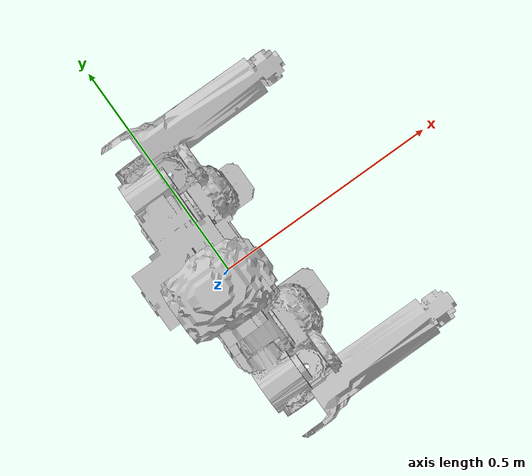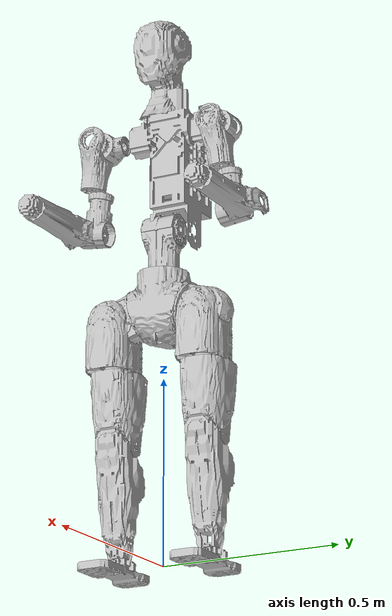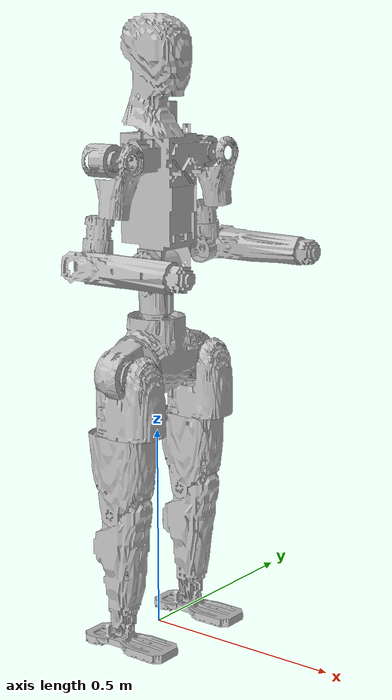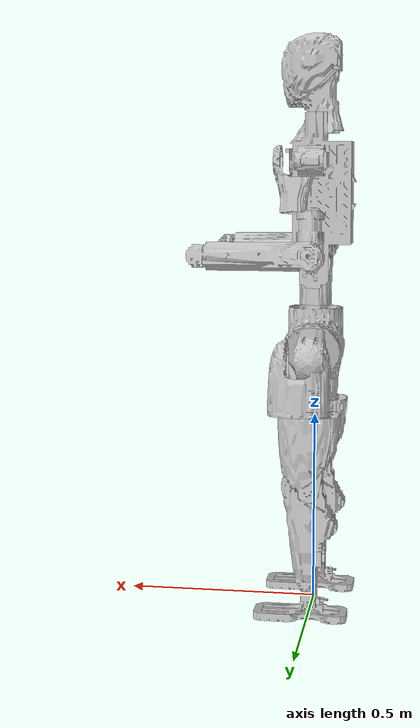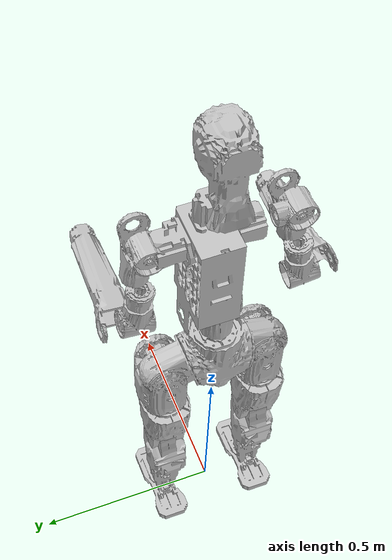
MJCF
<mujoco model="robot_251205">
    <compiler angle="radian" meshdir="../meshes_4_7" autolimits="true"/>

    <default>
        <default class="robot_251205">
            <!-- visual -->
            <default class="visual">
                <geom group="2" type="mesh" contype="0" conaffinity="0" rgba="0.75294 0.75294 0.75294 1"/>
            </default>

            <default class="collision">
                <geom group="3" mass="0" density="0" rgba="0.7 0.7 0.7 1"/>
            </default>

            <!-- joint defaults -->
            <default class="joint_150">
                <joint armature="0.07031" frictionloss="0.5" type="hinge" range="0 0" actuatorfrcrange="-150 150"/>
            </default>
            <default class="joint_95">
                <joint armature="0.07031" frictionloss="0.5" type="hinge" range="0 0" actuatorfrcrange="-95 95"/>
            </default>
            <default class="joint_75">
                <joint armature="0.0331" frictionloss="0.5" type="hinge" range="0 0" actuatorfrcrange="-75 75"/>
            </default>
            <default class="joint_60">
                <joint armature="0.03891" frictionloss="0.5" type="hinge" range="0 0" actuatorfrcrange="-60 60"/>
            </default>
            <default class="joint_54">
                <joint armature="0.0596" frictionloss="0.5" type="hinge" range="0 0" actuatorfrcrange="-54 54"/>
            </default>
            <default class="joint_42">
                <joint armature="0.0312822" frictionloss="0.5" type="hinge" range="0 0" actuatorfrcrange="-42 42"/>
            </default>
            <default class="joint_23">
                <joint armature="0.0312822" frictionloss="0.5" type="hinge" range="0 0" actuatorfrcrange="-23 23"/>
            </default>
        </default>
    </default>

    <asset>
        <mesh name="base_link" file="base_link.STL"/>
        <mesh name="left_hip_pitch_link" file="left_hip_pitch_link.STL"/>
        <mesh name="left_hip_roll_link" file="left_hip_roll_link.STL"/>
        <mesh name="left_hip_yaw_link" file="left_hip_yaw_link.STL"/>
        <mesh name="left_knee_link" file="left_knee_link.STL"/>
        <mesh name="left_ankle_pitch_link" file="left_ankle_pitch_link.STL"/>
        <mesh name="left_ankle_roll_link" file="left_ankle_roll_link.STL"/>
        <mesh name="right_hip_pitch_link" file="right_hip_pitch_link.STL"/>
        <mesh name="right_hip_roll_link" file="right_hip_roll_link.STL"/>
        <mesh name="right_hip_yaw_link" file="right_hip_yaw_link.STL"/>
        <mesh name="right_knee_link" file="right_knee_link.STL"/>
        <mesh name="right_ankle_pitch_link" file="right_ankle_pitch_link.STL"/>
        <mesh name="right_ankle_roll_link" file="right_ankle_roll_link.STL"/>
        <mesh name="waist_yaw_link" file="waist_yaw_link.STL"/>
        <mesh name="waist_pitch_link" file="waist_pitch_link.STL"/>
        <mesh name="head_yaw_link" file="head_yaw_link.STL"/>
        <mesh name="left_shoulder_pitch_link" file="left_shoulder_pitch_link.STL"/>
        <mesh name="left_shoulder_roll_link" file="left_shoulder_roll_link.STL"/>
        <mesh name="left_shoulder_yaw_link" file="left_shoulder_yaw_link.STL"/>
        <mesh name="left_elbow_link" file="left_elbow_link.STL"/>
        <mesh name="right_shoulder_pitch_link" file="right_shoulder_pitch_link.STL"/>
        <mesh name="right_shoulder_roll_link" file="right_shoulder_roll_link.STL"/>
        <mesh name="right_shoulder_yaw_link" file="right_shoulder_yaw_link.STL"/>
        <mesh name="right_elbow_link" file="right_elbow_link.STL"/>
    </asset>

    <worldbody>
        <light mode="targetbodycom" target="base_link" pos="1.40 0 1.40"/>

        <body name="base_link" pos="0 0 0.70">
            <freejoint name="base_free_joint"/>
            <inertial pos="-0.000045302 0.00008699 0.013618" mass="4.8898108" diaginertia="0.0280984 0.0257291 0.0159893"/>
            <geom class="visual" mesh="base_link"/>
            <geom class="collision" type="mesh" mesh="base_link"/>
            <site name="imu_sensor" pos="0 0 0.05" size="0.01" rgba="1 0 0 1" type="sphere"/>

            <!-- left leg -->
            <body name="left_hip_pitch_link" pos="0 0.066649 -0.017859" euler="-0.2618 0 0">
                <inertial pos="0.00035866 0.058586 0.000057785" mass="1.7625" diaginertia="0.0040007 0.002731 0.0030428"/>
                <joint class="joint_150" name="left_hip_pitch_joint" axis="0 1 0" range="-2.618 2.618"/>
                <geom class="visual" mesh="left_hip_pitch_link"/>

                <body name="left_hip_roll_link" pos="0.02795 0.071362284 0" euler="0.2618 0 0">
                    <inertial pos="-0.028652 -0.00018409 -0.079901" mass="1.8529" diaginertia="0.0063307 0.0077413 0.0051702"/>
                    <joint class="joint_54" name="left_hip_roll_joint" axis="1 0 0" range="-0.1746 1.0472"/>
                    <geom class="visual" mesh="left_hip_roll_link"/>

                    <body name="left_hip_yaw_link" pos="-0.02795 0 -0.140326859">
                        <inertial pos="0.0088165 -0.0024673 -0.074108" mass="2.7741" diaginertia="0.0089128 0.011098 0.0070389"/>
                        <joint class="joint_60" name="left_hip_yaw_joint" axis="0 0 -1" range="-2.3562 0.0873"/>
                        <geom class="visual" mesh="left_hip_yaw_link"/>

                        <body name="left_knee_link" pos="0 0 -0.1955">
                            <inertial pos="0.000069381 -0.00070901 -0.11521" mass="2.4855" diaginertia="0.018156 0.018909 0.003551"/>
                            <joint class="joint_95" name="left_knee_joint" axis="0 -1 0" range="-1.4835 0.0873"/>
                            <geom class="visual" mesh="left_knee_link"/>

                            <body name="left_ankle_pitch_link" pos="-0.0034319686 0 -0.302">
                                <inertial pos="0 0 0.0019528" mass="0.034894" diaginertia="0.000007 0.0000031 0.0000066"/>
                                <joint class="joint_75" name="left_ankle_pitch_joint" axis="0 1 0" range="-0.7854 0.7854"/>
                                <geom class="visual" mesh="left_ankle_pitch_link"/>

                                <body name="left_ankle_roll_link" pos="0 0 0">
                                    <inertial pos="-0.0044378 0.00022762 -0.019084" mass="0.23036" diaginertia="0.0001076 0.0004621 0.0005039"/>
                                    <joint class="joint_75" name="left_ankle_roll_joint" axis="1 0 0" range="-0.7854 0.7854"/>
                                    <geom class="visual" mesh="left_ankle_roll_link"/>
                                    <geom class="collision" type="cylinder" pos="0 0.035 -0.035" euler="0 1.5707 0" size="0.0025 0.09"/>
                                    <geom class="collision" type="box" pos="0.03 0 -0.035" size="0.125 0.045 0.009"/>
                                    <geom class="collision" type="cylinder" pos="0 -0.035 -0.035" euler="0 1.5707 0" size="0.0025 0.09"/>
                                </body>
                            </body>
                        </body>
                    </body>
                </body>
            </body>

            <!-- right leg -->
            <body name="right_hip_pitch_link" pos="0 -0.066649 -0.017859" euler="0.2618 0 0">
                <inertial pos="0.00035841 -0.056484 0.000058625" mass="1.7624323" diaginertia="0.0040006 0.0027309 0.0030428"/>
                <joint class="joint_150" name="right_hip_pitch_joint" axis="0 -1 0" range="-2.618 2.618"/>
                <geom class="visual" mesh="right_hip_pitch_link"/>

                <body name="right_hip_roll_link" pos="0.02795 -0.069262284 0" euler="-0.2618 0 0">
                    <inertial pos="-0.028656 0.00018143 -0.079893" mass="1.8530025" diaginertia="0.0063317 0.0077415 0.0051698"/>
                    <joint class="joint_54" name="right_hip_roll_joint" axis="1 0 0" range="-1.0472 0.1746"/>
                    <geom class="visual" mesh="right_hip_roll_link"/>

                    <body name="right_hip_yaw_link" pos="-0.02795 0 -0.140326859">
                        <inertial pos="0.0088079 0.0024648 -0.074101" mass="2.7740028" diaginertia="0.0089264 0.0110974 0.0070224"/>
                        <joint class="joint_60" name="right_hip_yaw_joint" axis="0 0 -1" range="-0.0873 2.3562"/>
                        <geom class="visual" mesh="right_hip_yaw_link"/>

                        <body name="right_knee_link" pos="0 0 -0.1955">
                            <inertial pos="0.000064361 0.00070767 -0.11523" mass="2.485274" diaginertia="0.0181531 0.0189058 0.0035505"/>
                            <joint class="joint_95" name="right_knee_joint" axis="0 1 0" range="-0.0873 1.4875"/>
                            <geom class="visual" mesh="right_knee_link"/>

                            <body name="right_ankle_pitch_link" pos="-0.00343196815 0 -0.302">
                                <inertial pos="0 0 0.0019528" mass="0.034894" diaginertia="0.000007 0.0000031 0.0000066"/>
                                <joint class="joint_75" name="right_ankle_pitch_joint" axis="0 -1 0" range="-0.7854 0.7854"/>
                                <geom class="visual" mesh="right_ankle_pitch_link"/>

                                <body name="right_ankle_roll_link" pos="0 0 0">
                                    <inertial pos="-0.0044378 -0.0002276 -0.019084" mass="0.23036" diaginertia="0.0001076 0.0004621 0.0005039"/>
                                    <joint class="joint_75" name="right_ankle_roll_joint" axis="1 0 0" range="-0.7854 0.7854"/>
                                    <geom class="visual" mesh="right_ankle_roll_link"/>
                                    <geom class="collision" type="cylinder" pos="0 0.035 -0.035" euler="0 1.5707 0" size="0.0025 0.09"/>
                                    <geom class="collision" type="box" pos="0.03 0 -0.035" size="0.125 0.045 0.009"/>
                                    <geom class="collision" type="cylinder" pos="0 -0.035 -0.035" euler="0 1.5707 0" size="0.0025 0.09"/>
                                </body>
                            </body>
                        </body>
                    </body>
                </body>
            </body>

            <!-- waist -->
            <body name="waist_yaw_link" pos="0 0 0.08535">
                <inertial pos="0.00070665 -0.00161674 0.08975323" mass="1.3221" diaginertia="0.0022384 0.0022305 0.0012304"/>
                <joint class="joint_42" name="waist_yaw_joint" axis="0 0 -1" range="-2.618 2.618"/>
                <geom class="visual" mesh="waist_yaw_link"/>

                    <body name="waist_pitch_link" pos="0 0.0381399999295982 0.10664999999993">
                        <inertial pos="-0.0139561411279714 -0.0466533864326649 0.179649571645974" mass="9.5517822" diaginertia="0.0991730 0.0897634 0.0587026"/>
                        <joint class="joint_42" name="waist_pitch_joint" axis="0 -1 0" range="-0.524 0.524"/>
                        <geom class="visual" mesh="waist_pitch_link"/>

                        <!-- head -->
                        <body name="head_yaw_link" pos="-0.00310085 -0.03824004 0.38480775">
                            <inertial pos="0.00584664 0 0.07025902" mass="1.3426692" diaginertia="0.0046874 0.0048918 0.0041773"/>
                            <joint class="joint_42" name="head_yaw_joint" axis="0 0 1" range="-0.524 0.524"/>
                            <geom class="visual" mesh="head_yaw_link"/>
                        </body>

                        <!-- left arm -->
                        <body name="left_shoulder_pitch_link" pos="-0.00310124 0.08595687 0.27799526">
                            <inertial pos="0.00628162 0.03422677 0.00131044" mass="0.83" diaginertia="0.001518 0.0006947 0.0015703"/>
                            <joint class="joint_23" name="left_shoulder_pitch_joint" axis="0 1 0" range="-2.8798 2.3562"/>
                            <geom class="visual" mesh="left_shoulder_pitch_link"/>

                            <body name="left_shoulder_roll_link" pos="0.04210045 0.05480313 0" euler="-1.45 0 0">
                                <inertial pos="-0.04522746 0.08758248 0" mass="0.604" diaginertia="0.0008986 0.0005348 0.001137"/>
                                <joint class="joint_23" name="left_shoulder_roll_joint" axis="1 0 0" range="-1.4486 1.5708"/>
                                <geom class="visual" mesh="left_shoulder_roll_link"/>

                                <body name="left_shoulder_yaw_link" pos="-0.04210047 0.12669999 0">
                                    <inertial pos="0 0.08551844 0.00275858" mass="0.628" diaginertia="0.0011141 0.0003885 0.0010495"/>
                                    <joint class="joint_23" name="left_shoulder_yaw_joint" axis="0 -1 0" range="-3.14 3.14"/>
                                    <geom class="visual" mesh="left_shoulder_yaw_link"/>

                                    <body name="left_elbow_link" pos="0 0.11329999 0.03950022" euler="0 0 -1.57">
                                        <inertial pos="0 0.13741996 -0.04007253" mass="0.6612967" diaginertia="0.0056388 0.0007202 0.0054803"/>
                                        <joint class="joint_23" name="left_elbow_joint" axis="0 0 1" range="-2.3562 0.8727"/>
                                        <geom class="visual" mesh="left_elbow_link"/>
                                    </body>
                                </body>
                            </body>
                        </body>

                        <!-- right arm -->
                        <body name="right_shoulder_pitch_link" pos="-0.00310119 -0.16224313 0.27799518">
                            <inertial pos="0.00628162 -0.03422364 -0.00131044" mass="0.83" diaginertia="0.001518 0.0006947 0.0015703"/>
                            <joint class="joint_23" name="right_shoulder_pitch_joint" axis="0 -1 0" range="-2.3562 2.8798"/>
                            <geom class="visual" mesh="right_shoulder_pitch_link"/>

                            <body name="right_shoulder_roll_link" pos="0.04210046 -0.0548 0" euler="1.45 0 0">
                                <inertial pos="-0.04522736 -0.08758251 0" mass="0.604" diaginertia="0.0008986 0.0005348 0.001137"/>
                                <joint class="joint_23" name="right_shoulder_roll_joint" axis="1 0 0" range="-1.5708 1.4486"/>
                                <geom class="visual" mesh="right_shoulder_roll_link"/>

                                <body name="right_shoulder_yaw_link" pos="-0.04210041 -0.12670001 0">
                                    <inertial pos="0 -0.0855184 0.00275852" mass="0.628" diaginertia="0.0011141 0.0003885 0.0010495"/>
                                    <joint class="joint_23" name="right_shoulder_yaw_joint" axis="0 1 0" range="-3.14 4.14"/>
                                    <geom class="visual" mesh="right_shoulder_yaw_link"/>

                                    <body name="right_elbow_link" pos="0 -0.11329997 0.03950014" euler="0 0 1.57">
                                        <inertial pos="0 -0.13741993 -0.03892784" mass="0.6612967" diaginertia="0.0056388 0.0007202 0.0054803"/>
                                        <joint class="joint_23" name="right_elbow_joint" axis="0 0 1" range="-0.8727 2.3562"/>
                                        <geom class="visual" mesh="right_elbow_link"/>
                                    </body>
                                </body>
                            </body>
                    </body>
                </body>
            </body>
        </body>
    </worldbody>

    <actuator>
        <!-- left leg -->
        <general joint="left_hip_pitch_joint" ctrllimited="true" ctrlrange="-150 150"/>
        <general joint="left_hip_roll_joint" ctrllimited="true" ctrlrange="-54 54"/>
        <general joint="left_hip_yaw_joint" ctrllimited="true" ctrlrange="-60 60"/>
        <general joint="left_knee_joint" ctrllimited="true" ctrlrange="-95 95"/>
        <general joint="left_ankle_pitch_joint" ctrllimited="true" ctrlrange="-75 75"/>
        <general joint="left_ankle_roll_joint" ctrllimited="true" ctrlrange="-75 75"/>

        <!-- right leg -->
        <general joint="right_hip_pitch_joint" ctrllimited="true" ctrlrange="-150 150"/>
        <general joint="right_hip_roll_joint" ctrllimited="true" ctrlrange="-54 54"/>
        <general joint="right_hip_yaw_joint" ctrllimited="true" ctrlrange="-60 60"/>
        <general joint="right_knee_joint" ctrllimited="true" ctrlrange="-95 95"/>
        <general joint="right_ankle_pitch_joint" ctrllimited="true" ctrlrange="-75 75"/>
        <general joint="right_ankle_roll_joint" ctrllimited="true" ctrlrange="-75 75"/>

        <!-- waist -->
        <general joint="waist_yaw_joint" ctrllimited="true" ctrlrange="-42 42"/>
        <general joint="waist_pitch_joint" ctrllimited="true" ctrlrange="-42 42"/>

        <general joint="head_yaw_joint" ctrllimited="true" ctrlrange="-42 42"/>
        <!-- arms -->
        <general joint="left_shoulder_pitch_joint" ctrllimited="true" ctrlrange="-23 23"/>
        <general joint="left_shoulder_roll_joint" ctrllimited="true" ctrlrange="-23 23"/>
        <general joint="left_shoulder_yaw_joint" ctrllimited="true" ctrlrange="-23 23"/>
        <general joint="left_elbow_joint" ctrllimited="true" ctrlrange="-23 23"/>

        <general joint="right_shoulder_pitch_joint" ctrllimited="true" ctrlrange="-23 23"/>
        <general joint="right_shoulder_roll_joint" ctrllimited="true" ctrlrange="-23 23"/>
        <general joint="right_shoulder_yaw_joint" ctrllimited="true" ctrlrange="-23 23"/>
        <general joint="right_elbow_joint" ctrllimited="true" ctrlrange="-23 23"/>

    </actuator>
    <sensor>
        <framequat name='orientation' objtype='site' objname='imu_sensor'/>
        <gyro name='angular-velocity' site='imu_sensor' cutoff='34.9'/>
        <accelerometer name='linear-acceleration' site='imu_sensor' cutoff='157'/>
    </sensor>
</mujoco>
